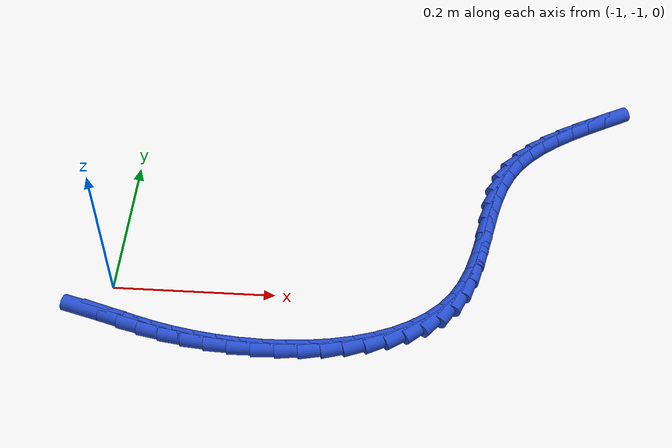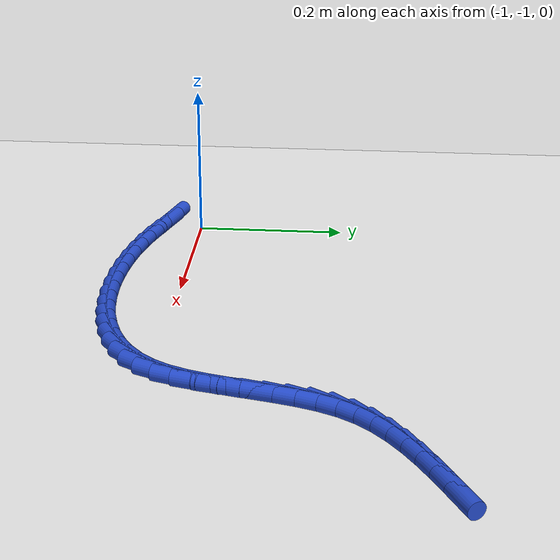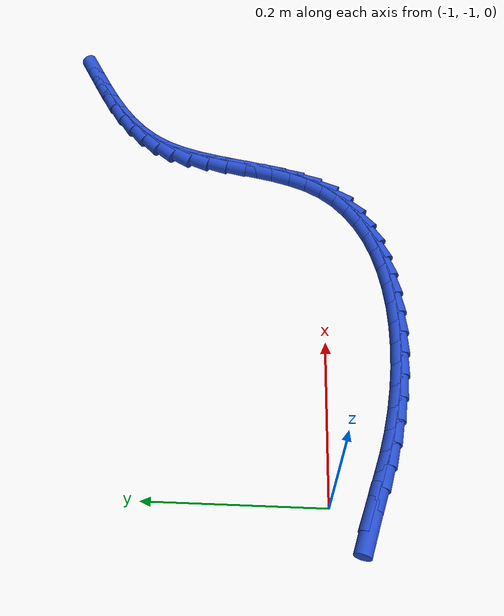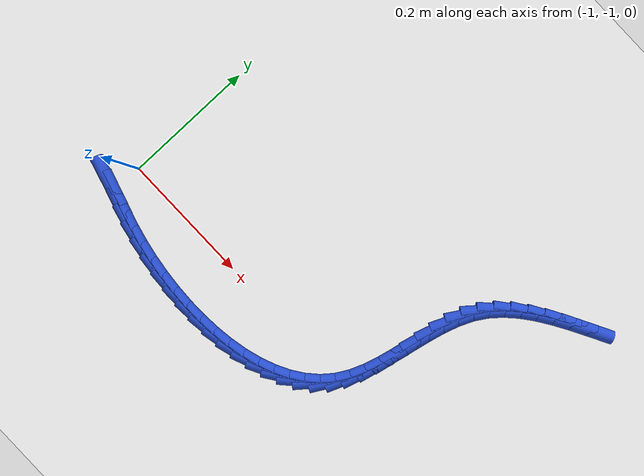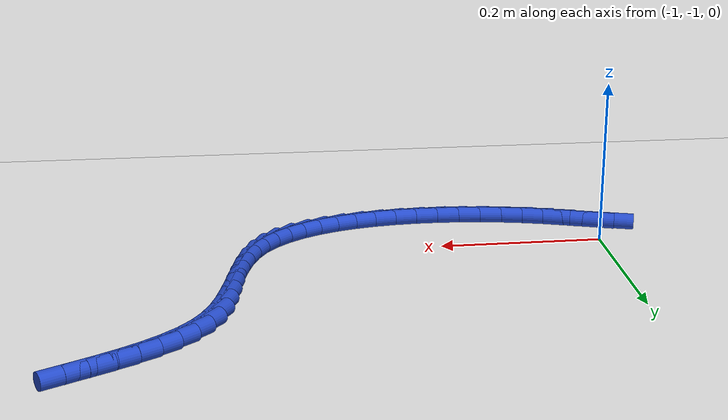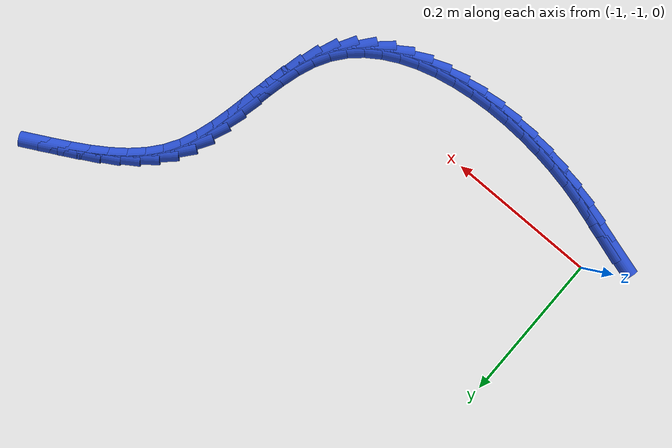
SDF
<sdf version="1.6">
 <world name="default">
  <model name="ground_plane">
   <static>1</static>
   <link name="link">
    <collision name="collision">
     <geometry><plane><normal>0 0 1</normal><size>100 100</size></plane></geometry>
     <surface><friction><ode><mu>100</mu><mu2>50</mu2></ode></friction></surface>
    </collision>
    <visual name="visual">
     <cast_shadows>0</cast_shadows>
     <geometry><plane><normal>0 0 1</normal><size>100 100</size></plane></geometry>
     <material>
      <script><uri>file://media/materials/scripts/gazebo.material</uri><name>Gazebo/WhiteGlow</name></script>
     </material>
    </visual>
   </link>
  </model>
  <model name="line">
   <link name="link_212">
    <pose>-1.0140379684901584 -1.0431702642170886 0.01 0 1.57 -0.27791404859177515</pose>
    <collision name="collision">
     <geometry><cylinder><radius>0.01</radius><length>0.08</length></cylinder></geometry>
    </collision>
    <visual name="visual">
     <material>
      <script><name>Gazebo/Blue</name><uri>file://media/materials/scripts/gazebo.material</uri></script>
     </material>
     <geometry><cylinder><radius>0.01</radius><length>0.08</length></cylinder></geometry>
    </visual>
   </link>
   <link name="link_213">
    <pose>-0.9908091145301346 -1.049797392205906 0.01 0 1.57 -0.3041147056141597</pose>
    <collision name="collision">
     <geometry><cylinder><radius>0.01</radius><length>0.08</length></cylinder></geometry>
    </collision>
    <visual name="visual">
     <material>
      <script><name>Gazebo/Blue</name><uri>file://media/materials/scripts/gazebo.material</uri></script>
     </material>
     <geometry><cylinder><radius>0.01</radius><length>0.08</length></cylinder></geometry>
    </visual>
   </link>
   <link name="link_214">
    <pose>-0.9671545677963219 -1.0572213825374563 0.01 0 1.57 -0.2901890299006833</pose>
    <collision name="collision">
     <geometry><cylinder><radius>0.01</radius><length>0.08</length></cylinder></geometry>
    </collision>
    <visual name="visual">
     <material>
      <script><name>Gazebo/Blue</name><uri>file://media/materials/scripts/gazebo.material</uri></script>
     </material>
     <geometry><cylinder><radius>0.01</radius><length>0.08</length></cylinder></geometry>
    </visual>
   </link>
   <link name="link_215">
    <pose>-0.9426721224198235 -1.064532297599534 0.01 0 1.57 -0.24476329819857834</pose>
    <collision name="collision">
     <geometry><cylinder><radius>0.01</radius><length>0.08</length></cylinder></geometry>
    </collision>
    <visual name="visual">
     <material>
      <script><name>Gazebo/Blue</name><uri>file://media/materials/scripts/gazebo.material</uri></script>
     </material>
     <geometry><cylinder><radius>0.01</radius><length>0.08</length></cylinder></geometry>
    </visual>
   </link>
   <link name="link_216">
    <pose>-0.9170515038131493 -1.07093158992264 0.01 0 1.57 -0.19422339630279029</pose>
    <collision name="collision">
     <geometry><cylinder><radius>0.01</radius><length>0.08</length></cylinder></geometry>
    </collision>
    <visual name="visual">
     <material>
      <script><name>Gazebo/Blue</name><uri>file://media/materials/scripts/gazebo.material</uri></script>
     </material>
     <geometry><cylinder><radius>0.01</radius><length>0.08</length></cylinder></geometry>
    </visual>
   </link>
   <link name="link_217">
    <pose>-0.8904336292359412 -1.0761674065189777 0.01 0 1.57 -0.1448637607953468</pose>
    <collision name="collision">
     <geometry><cylinder><radius>0.01</radius><length>0.08</length></cylinder></geometry>
    </collision>
    <visual name="visual">
     <material>
      <script><name>Gazebo/Blue</name><uri>file://media/materials/scripts/gazebo.material</uri></script>
     </material>
     <geometry><cylinder><radius>0.01</radius><length>0.08</length></cylinder></geometry>
    </visual>
   </link>
   <link name="link_218">
    <pose>-0.8630976105994476 -1.080155340363952 0.01 0 1.57 -0.09532447048354362</pose>
    <collision name="collision">
     <geometry><cylinder><radius>0.01</radius><length>0.08</length></cylinder></geometry>
    </collision>
    <visual name="visual">
     <material>
      <script><name>Gazebo/Blue</name><uri>file://media/materials/scripts/gazebo.material</uri></script>
     </material>
     <geometry><cylinder><radius>0.01</radius><length>0.08</length></cylinder></geometry>
    </visual>
   </link>
   <link name="link_219">
    <pose>-0.8353225955278489 -1.0828110277051701 0.01 0 1.57 -0.044326882747942706</pose>
    <collision name="collision">
     <geometry><cylinder><radius>0.01</radius><length>0.08</length></cylinder></geometry>
    </collision>
    <visual name="visual">
     <material>
      <script><name>Gazebo/Blue</name><uri>file://media/materials/scripts/gazebo.material</uri></script>
     </material>
     <geometry><cylinder><radius>0.01</radius><length>0.08</length></cylinder></geometry>
    </visual>
   </link>
   <link name="link_220">
    <pose>-0.8073877316453275 -1.0840501047902396 0.01 0 1.57 0.009415202749458427</pose>
    <collision name="collision">
     <geometry><cylinder><radius>0.01</radius><length>0.08</length></cylinder></geometry>
    </collision>
    <visual name="visual">
     <material>
      <script><name>Gazebo/Blue</name><uri>file://media/materials/scripts/gazebo.material</uri></script>
     </material>
     <geometry><cylinder><radius>0.01</radius><length>0.08</length></cylinder></geometry>
    </visual>
   </link>
   <link name="link_221">
    <pose>-0.7795721665760648 -1.0837882078667673 0.01 0 1.57 0.06727355896918895</pose>
    <collision name="collision">
     <geometry><cylinder><radius>0.01</radius><length>0.08</length></cylinder></geometry>
    </collision>
    <visual name="visual">
     <material>
      <script><name>Gazebo/Blue</name><uri>file://media/materials/scripts/gazebo.material</uri></script>
     </material>
     <geometry><cylinder><radius>0.01</radius><length>0.08</length></cylinder></geometry>
    </visual>
   </link>
   <link name="link_222">
    <pose>-0.7521550479442421 -1.0819409731823604 0.01 0 1.57 0.1307751100753075</pose>
    <collision name="collision">
     <geometry><cylinder><radius>0.01</radius><length>0.08</length></cylinder></geometry>
    </collision>
    <visual name="visual">
     <material>
      <script><name>Gazebo/Blue</name><uri>file://media/materials/scripts/gazebo.material</uri></script>
     </material>
     <geometry><cylinder><radius>0.01</radius><length>0.08</length></cylinder></geometry>
    </visual>
   </link>
   <link name="link_223">
    <pose>-0.7254155233740417 -1.0784240369846259 0.01 0 1.57 0.2016599807828135</pose>
    <collision name="collision">
     <geometry><cylinder><radius>0.01</radius><length>0.08</length></cylinder></geometry>
    </collision>
    <visual name="visual">
     <material>
      <script><name>Gazebo/Blue</name><uri>file://media/materials/scripts/gazebo.material</uri></script>
     </material>
     <geometry><cylinder><radius>0.01</radius><length>0.08</length></cylinder></geometry>
    </visual>
   </link>
   <link name="link_224">
    <pose>-0.6996327404896452 -1.073153035521171 0.01 0 1.57 0.28191284748837936</pose>
    <collision name="collision">
     <geometry><cylinder><radius>0.01</radius><length>0.08</length></cylinder></geometry>
    </collision>
    <visual name="visual">
     <material>
      <script><name>Gazebo/Blue</name><uri>file://media/materials/scripts/gazebo.material</uri></script>
     </material>
     <geometry><cylinder><radius>0.01</radius><length>0.08</length></cylinder></geometry>
    </visual>
   </link>
   <link name="link_225">
    <pose>-0.675085846915234 -1.0660436050396027 0.01 0 1.57 0.373731433846804</pose>
    <collision name="collision">
     <geometry><cylinder><radius>0.01</radius><length>0.08</length></cylinder></geometry>
    </collision>
    <visual name="visual">
     <material>
      <script><name>Gazebo/Blue</name><uri>file://media/materials/scripts/gazebo.material</uri></script>
     </material>
     <geometry><cylinder><radius>0.01</radius><length>0.08</length></cylinder></geometry>
    </visual>
   </link>
   <link name="link_226">
    <pose>-0.6520539902749891 -1.0570113817875275 0.01 0 1.57 0.47936325061670637</pose>
    <collision name="collision">
     <geometry><cylinder><radius>0.01</radius><length>0.08</length></cylinder></geometry>
    </collision>
    <visual name="visual">
     <material>
      <script><name>Gazebo/Blue</name><uri>file://media/materials/scripts/gazebo.material</uri></script>
     </material>
     <geometry><cylinder><radius>0.01</radius><length>0.08</length></cylinder></geometry>
    </visual>
   </link>
   <link name="link_227">
    <pose>-0.6308163181930941 -1.0459720020125534 0.01 0 1.57 0.6007059096849503</pose>
    <collision name="collision">
     <geometry><cylinder><radius>0.01</radius><length>0.08</length></cylinder></geometry>
    </collision>
    <visual name="visual">
     <material>
      <script><name>Gazebo/Blue</name><uri>file://media/materials/scripts/gazebo.material</uri></script>
     </material>
     <geometry><cylinder><radius>0.01</radius><length>0.08</length></cylinder></geometry>
    </visual>
   </link>
   <link name="link_228">
    <pose>-0.6116519782937297 -1.0328411019622878 0.01 0 1.57 0.7385725310326227</pose>
    <collision name="collision">
     <geometry><cylinder><radius>0.01</radius><length>0.08</length></cylinder></geometry>
    </collision>
    <visual name="visual">
     <material>
      <script><name>Gazebo/Blue</name><uri>file://media/materials/scripts/gazebo.material</uri></script>
     </material>
     <geometry><cylinder><radius>0.01</radius><length>0.08</length></cylinder></geometry>
    </visual>
   </link>
   <link name="link_229">
    <pose>-0.5948401182010775 -1.017534317884337 0.01 0 1.57 0.8916762412893812</pose>
    <collision name="collision">
     <geometry><cylinder><radius>0.01</radius><length>0.08</length></cylinder></geometry>
    </collision>
    <visual name="visual">
     <material>
      <script><name>Gazebo/Blue</name><uri>file://media/materials/scripts/gazebo.material</uri></script>
     </material>
     <geometry><cylinder><radius>0.01</radius><length>0.08</length></cylinder></geometry>
    </visual>
   </link>
   <link name="link_230">
    <pose>-0.5806598855393195 -0.9999672860263081 0.01 0 1.57 1.0530274588054025</pose>
    <collision name="collision">
     <geometry><cylinder><radius>0.01</radius><length>0.08</length></cylinder></geometry>
    </collision>
    <visual name="visual">
     <material>
      <script><name>Gazebo/Blue</name><uri>file://media/materials/scripts/gazebo.material</uri></script>
     </material>
     <geometry><cylinder><radius>0.01</radius><length>0.08</length></cylinder></geometry>
    </visual>
   </link>
   <link name="link_231">
    <pose>-0.5693373142642302 -0.980089282700907 0.01 0 1.57 1.1888840419453062</pose>
    <collision name="collision">
     <geometry><cylinder><radius>0.01</radius><length>0.08</length></cylinder></geometry>
    </collision>
    <visual name="visual">
     <material>
      <script><name>Gazebo/Blue</name><uri>file://media/materials/scripts/gazebo.material</uri></script>
     </material>
     <geometry><cylinder><radius>0.01</radius><length>0.08</length></cylinder></geometry>
    </visual>
   </link>
   <link name="link_232">
    <pose>-0.5605457390017125 -0.9581996417859495 0.01 0 1.57 1.283381309714048</pose>
    <collision name="collision">
     <geometry><cylinder><radius>0.01</radius><length>0.08</length></cylinder></geometry>
    </collision>
    <visual name="visual">
     <material>
      <script><name>Gazebo/Blue</name><uri>file://media/materials/scripts/gazebo.material</uri></script>
     </material>
     <geometry><cylinder><radius>0.01</radius><length>0.08</length></cylinder></geometry>
    </visual>
   </link>
   <link name="link_233">
    <pose>-0.5536304300439059 -0.9348054799367415 0.01 0 1.57 1.3412780799784474</pose>
    <collision name="collision">
     <geometry><cylinder><radius>0.01</radius><length>0.08</length></cylinder></geometry>
    </collision>
    <visual name="visual">
     <material>
      <script><name>Gazebo/Blue</name><uri>file://media/materials/scripts/gazebo.material</uri></script>
     </material>
     <geometry><cylinder><radius>0.01</radius><length>0.08</length></cylinder></geometry>
    </visual>
   </link>
   <link name="link_234">
    <pose>-0.5479323392821961 -0.9104166489102431 0.01 0 1.57 1.3670232251152832</pose>
    <collision name="collision">
     <geometry><cylinder><radius>0.01</radius><length>0.08</length></cylinder></geometry>
    </collision>
    <visual name="visual">
     <material>
      <script><name>Gazebo/Blue</name><uri>file://media/materials/scripts/gazebo.material</uri></script>
     </material>
     <geometry><cylinder><radius>0.01</radius><length>0.08</length></cylinder></geometry>
    </visual>
   </link>
   <link name="link_235">
    <pose>-0.5427924186079706 -0.8855430004634182 0.01 0 1.57 1.362933595436329</pose>
    <collision name="collision">
     <geometry><cylinder><radius>0.01</radius><length>0.08</length></cylinder></geometry>
    </collision>
    <visual name="visual">
     <material>
      <script><name>Gazebo/Blue</name><uri>file://media/materials/scripts/gazebo.material</uri></script>
     </material>
     <geometry><cylinder><radius>0.01</radius><length>0.08</length></cylinder></geometry>
    </visual>
   </link>
   <link name="link_236">
    <pose>-0.5375516199126156 -0.8606943863532275 0.01 0 1.57 1.3288279378445926</pose>
    <collision name="collision">
     <geometry><cylinder><radius>0.01</radius><length>0.08</length></cylinder></geometry>
    </collision>
    <visual name="visual">
     <material>
      <script><name>Gazebo/Blue</name><uri>file://media/materials/scripts/gazebo.material</uri></script>
     </material>
     <geometry><cylinder><radius>0.01</radius><length>0.08</length></cylinder></geometry>
    </visual>
   </link>
   <link name="link_237">
    <pose>-0.5315508950875177 -0.8363806583366328 0.01 0 1.57 1.262122024692501</pose>
    <collision name="collision">
     <geometry><cylinder><radius>0.01</radius><length>0.08</length></cylinder></geometry>
    </collision>
    <visual name="visual">
     <material>
      <script><name>Gazebo/Blue</name><uri>file://media/materials/scripts/gazebo.material</uri></script>
     </material>
     <geometry><cylinder><radius>0.01</radius><length>0.08</length></cylinder></geometry>
    </visual>
   </link>
   <link name="link_238">
    <pose>-0.5241311960240632 -0.8131116681705957 0.01 0 1.57 1.1584759070412507</pose>
    <collision name="collision">
     <geometry><cylinder><radius>0.01</radius><length>0.08</length></cylinder></geometry>
    </collision>
    <visual name="visual">
     <material>
      <script><name>Gazebo/Blue</name><uri>file://media/materials/scripts/gazebo.material</uri></script>
     </material>
     <geometry><cylinder><radius>0.01</radius><length>0.08</length></cylinder></geometry>
    </visual>
   </link>
   <link name="link_239">
    <pose>-0.5146334746136388 -0.791397267612078 0.01 0 1.57 1.0173565247001883</pose>
    <collision name="collision">
     <geometry><cylinder><radius>0.01</radius><length>0.08</length></cylinder></geometry>
    </collision>
    <visual name="visual">
     <material>
      <script><name>Gazebo/Blue</name><uri>file://media/materials/scripts/gazebo.material</uri></script>
     </material>
     <geometry><cylinder><radius>0.01</radius><length>0.08</length></cylinder></geometry>
    </visual>
   </link>
   <link name="link_240">
    <pose>-0.5024620615854728 -0.7716975809288057 0.01 0 1.57 0.8739676306824532</pose>
    <collision name="collision">
     <geometry><cylinder><radius>0.01</radius><length>0.08</length></cylinder></geometry>
    </collision>
    <visual name="visual">
     <material>
      <script><name>Gazebo/Blue</name><uri>file://media/materials/scripts/gazebo.material</uri></script>
     </material>
     <geometry><cylinder><radius>0.01</radius><length>0.08</length></cylinder></geometry>
    </visual>
   </link>
   <link name="link_241">
    <pose>-0.48764038723325 -0.7539869824445828 0.01 0 1.57 0.7528896173077011</pose>
    <collision name="collision">
     <geometry><cylinder><radius>0.01</radius><length>0.08</length></cylinder></geometry>
    </collision>
    <visual name="visual">
     <material>
      <script><name>Gazebo/Blue</name><uri>file://media/materials/scripts/gazebo.material</uri></script>
     </material>
     <geometry><cylinder><radius>0.01</radius><length>0.08</length></cylinder></geometry>
    </visual>
   </link>
   <link name="link_242">
    <pose>-0.4705417053071064 -0.7379653724985611 0.01 0 1.57 0.6564099788522293</pose>
    <collision name="collision">
     <geometry><cylinder><radius>0.01</radius><length>0.08</length></cylinder></geometry>
    </collision>
    <visual name="visual">
     <material>
      <script><name>Gazebo/Blue</name><uri>file://media/materials/scripts/gazebo.material</uri></script>
     </material>
     <geometry><cylinder><radius>0.01</radius><length>0.08</length></cylinder></geometry>
    </visual>
   </link>
   <link name="link_243">
    <pose>-0.4515432282919731 -0.7233295453782709 0.01 0 1.57 0.583690341993935</pose>
    <collision name="collision">
     <geometry><cylinder><radius>0.01</radius><length>0.08</length></cylinder></geometry>
    </collision>
    <visual name="visual">
     <material>
      <script><name>Gazebo/Blue</name><uri>file://media/materials/scripts/gazebo.material</uri></script>
     </material>
     <geometry><cylinder><radius>0.01</radius><length>0.08</length></cylinder></geometry>
    </visual>
   </link>
   <link name="link_244">
    <pose>-0.4310221686727829 -0.7097762953712449 0.01 0 1.57 0.5327151383841683</pose>
    <collision name="collision">
     <geometry><cylinder><radius>0.01</radius><length>0.08</length></cylinder></geometry>
    </collision>
    <visual name="visual">
     <material>
      <script><name>Gazebo/Blue</name><uri>file://media/materials/scripts/gazebo.material</uri></script>
     </material>
     <geometry><cylinder><radius>0.01</radius><length>0.08</length></cylinder></geometry>
    </visual>
   </link>
   <link name="link_245">
    <pose>-0.40935573893446725 -0.6970024167650134 0.01 0 1.57 0.5014284002126321</pose>
    <collision name="collision">
     <geometry><cylinder><radius>0.01</radius><length>0.08</length></cylinder></geometry>
    </collision>
    <visual name="visual">
     <material>
      <script><name>Gazebo/Blue</name><uri>file://media/materials/scripts/gazebo.material</uri></script>
     </material>
     <geometry><cylinder><radius>0.01</radius><length>0.08</length></cylinder></geometry>
    </visual>
   </link>
   <link name="link_246">
    <pose>-0.3869211515619576 -0.6847047038471078 0.01 0 1.57 0.4882891491031572</pose>
    <collision name="collision">
     <geometry><cylinder><radius>0.01</radius><length>0.08</length></cylinder></geometry>
    </collision>
    <visual name="visual">
     <material>
      <script><name>Gazebo/Blue</name><uri>file://media/materials/scripts/gazebo.material</uri></script>
     </material>
     <geometry><cylinder><radius>0.01</radius><length>0.08</length></cylinder></geometry>
    </visual>
   </link>
  </model>
 </world>
</sdf>
